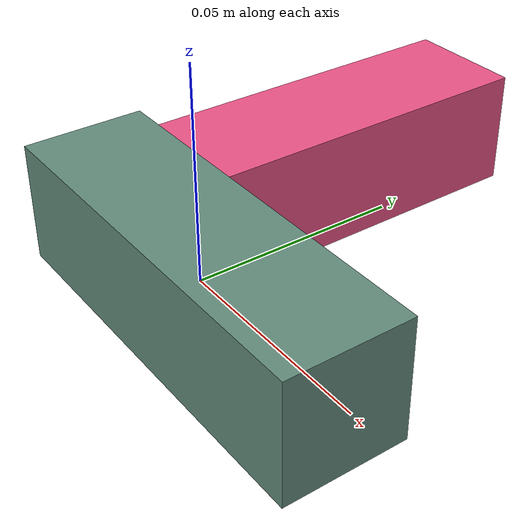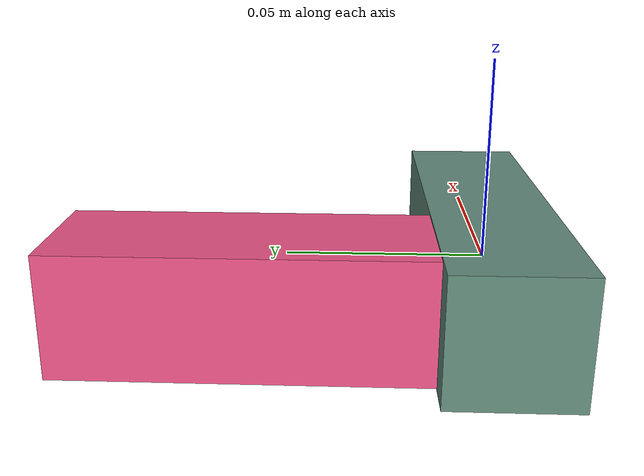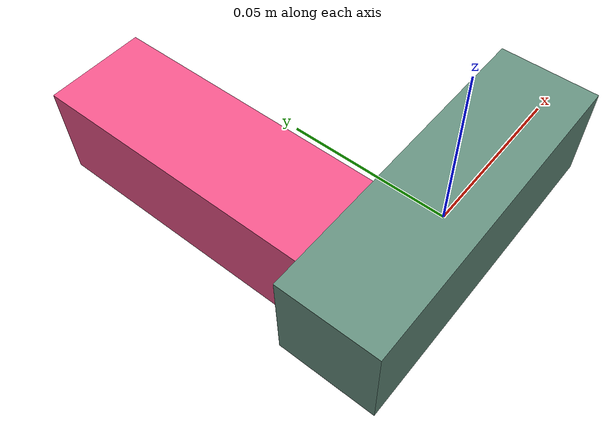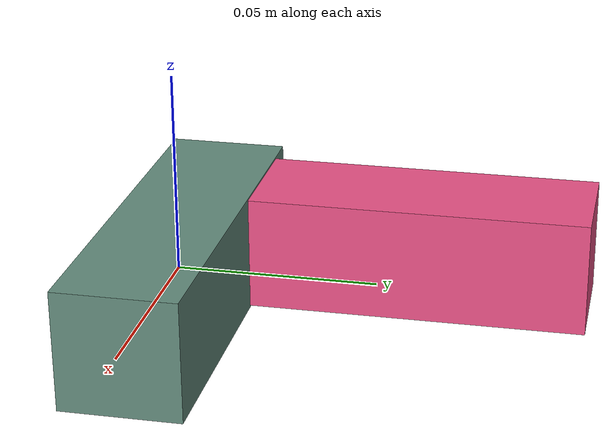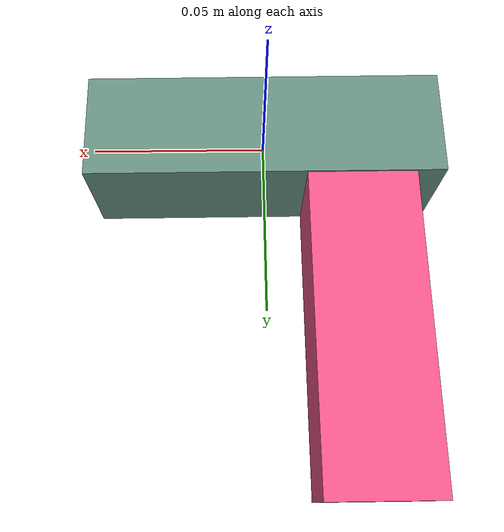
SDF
<sdf version="1.4"><world name="default"><model name="object0"><link name="link1"><pose>0 0 0 0 0 0</pose><inertial><pose>0 0 0 0 0 0</pose><mass>0.05361066717007294</mass><inertia><ixx>8.04160007551094e-06</ixx><ixy>0</ixy><iyy>4.805446869264964e-05</iyy><ixz>0</ixz><iyz>0</iyz><izz>4.805446869264964e-05</izz></inertia></inertial><visual name="link1_visual"><pose>0 0  0 0 0 0</pose><geometry><box><size>0.09927901327791286 0.03 0.03</size></box></geometry><material><diffuse>0.3896593712544877 0.5499736047249334 0.4891899156325539 1</diffuse></material></visual><collision><pose>0 0  0 0 0 0</pose><geometry><box><size>0.09927901327791286 0.03 0.03</size></box></geometry></collision></link><link name="link2"><pose>-0.02661492468640349 0.04809733710501364 0 0 0 0</pose><inertial><pose>0 0 0 0 0 0</pose><mass>0.056477946942693716</mass><inertia><ixx>5.5441647808686285e-05</ixx><ixy>0</ixy><iyy>8.194008802269145e-06</iyy><ixz>0</ixz><iyz>0</iyz><izz>5.57193310478212e-05</izz></inertia></inertial><visual name="link2_visual"><pose>0 0  0 0 0 0</pose><geometry><box><size>0.03 0.10458879063461801 0.028999999999999998</size></box></geometry><material><diffuse>0.9262581850535083 0.3261269661533289 0.5323905668473051 1</diffuse></material></visual><collision><pose>0 0  0 0 0 0</pose><geometry><box><size>0.03 0.10458879063461801 0.028999999999999998</size></box></geometry></collision></link><joint name="link_joint_0" type="fixed"><parent>link1</parent><child>link2</child><pose>0 0 0 0 0 0</pose><axis><xyz>0 0 1</xyz></axis></joint></model></world></sdf>
